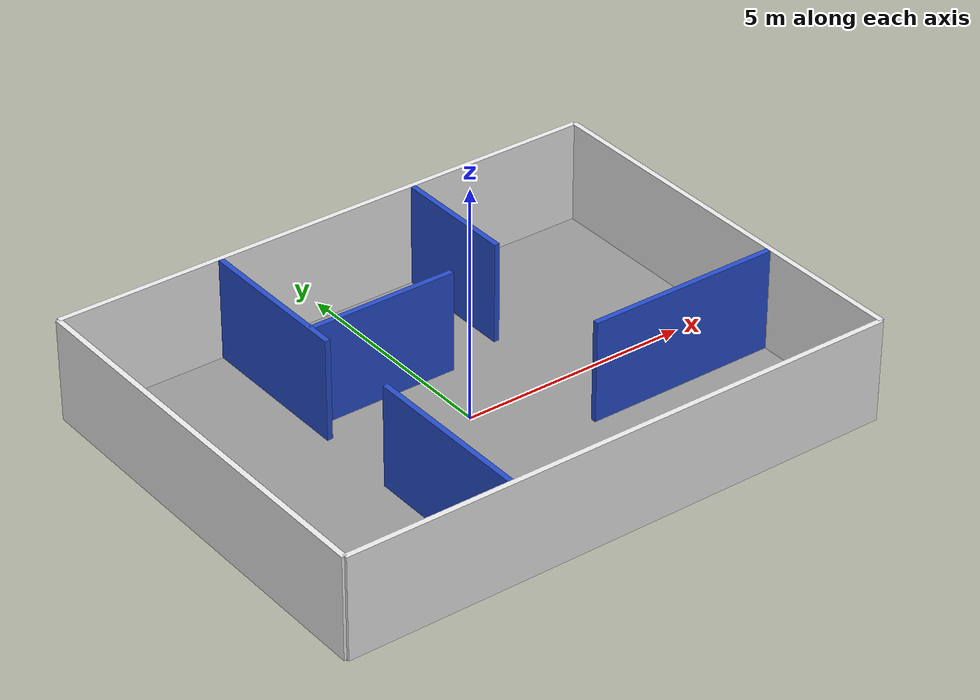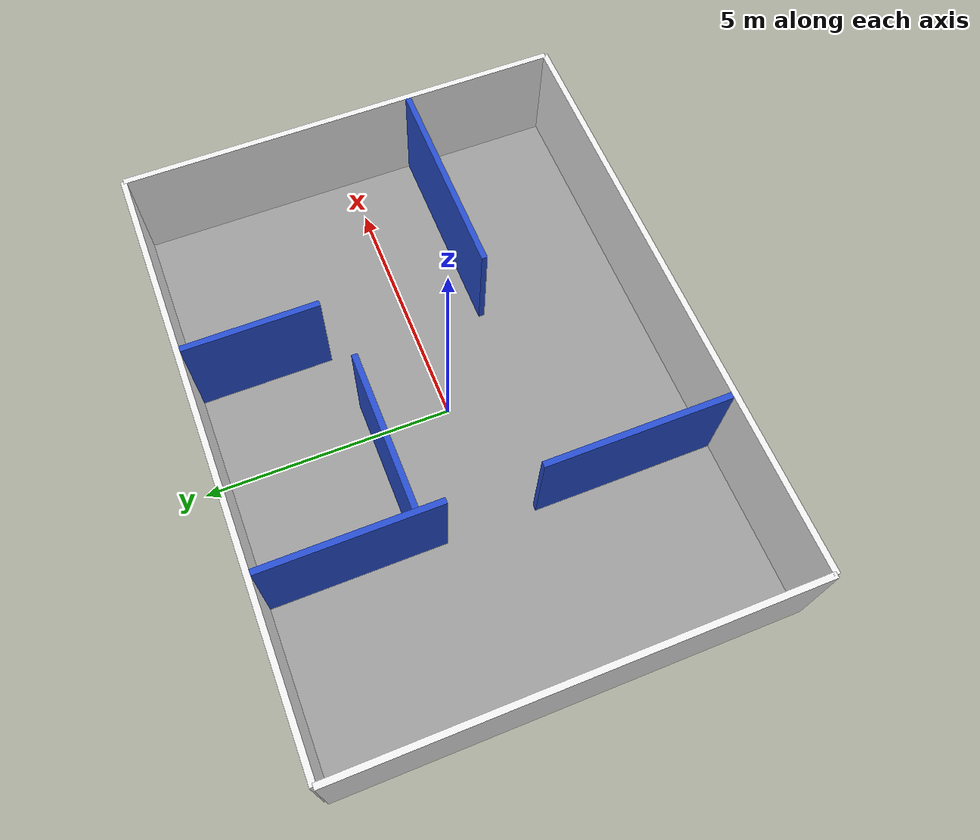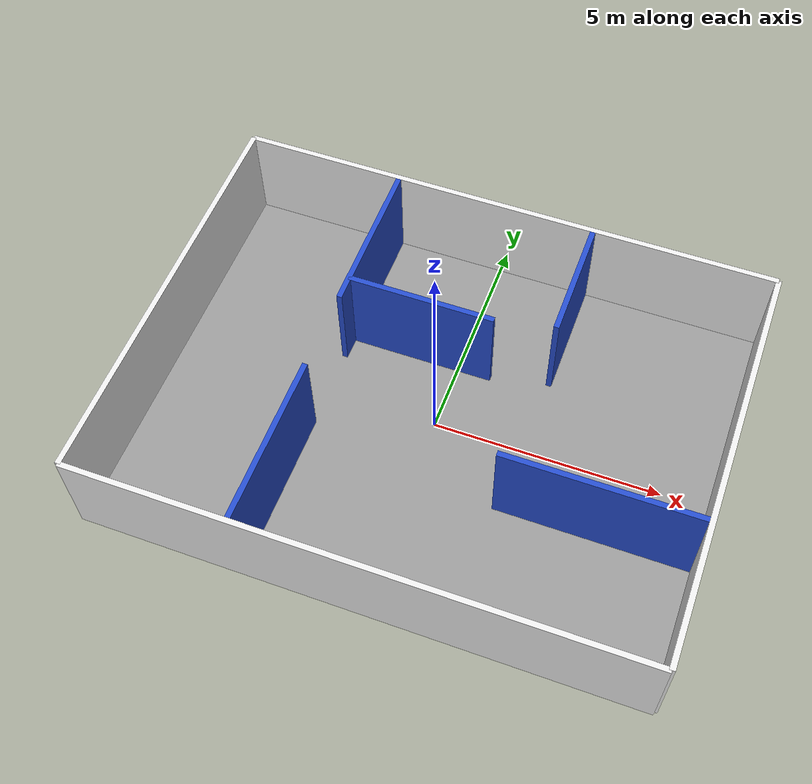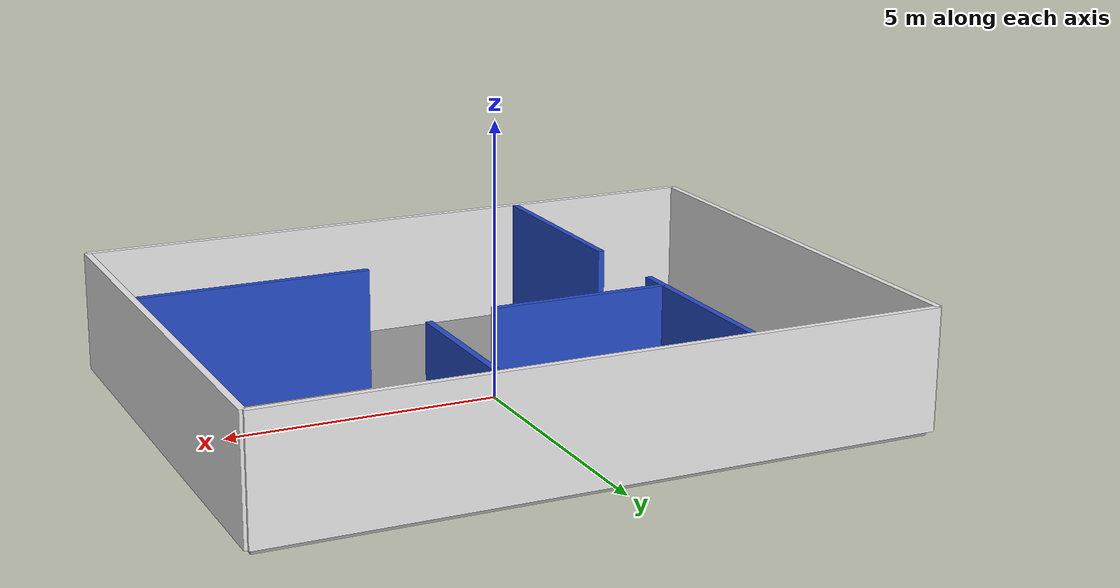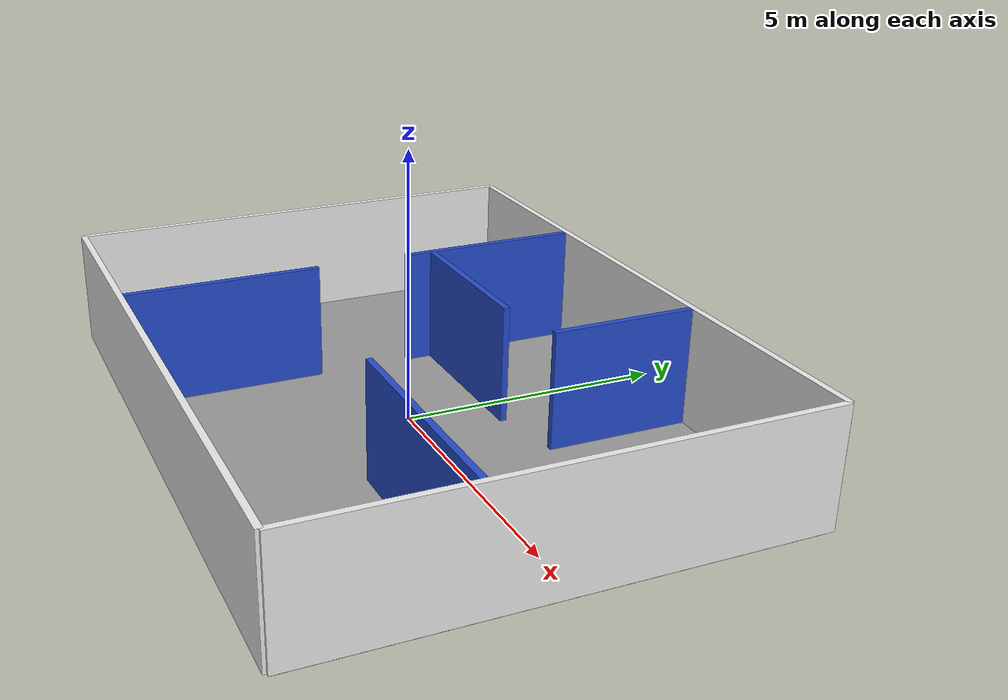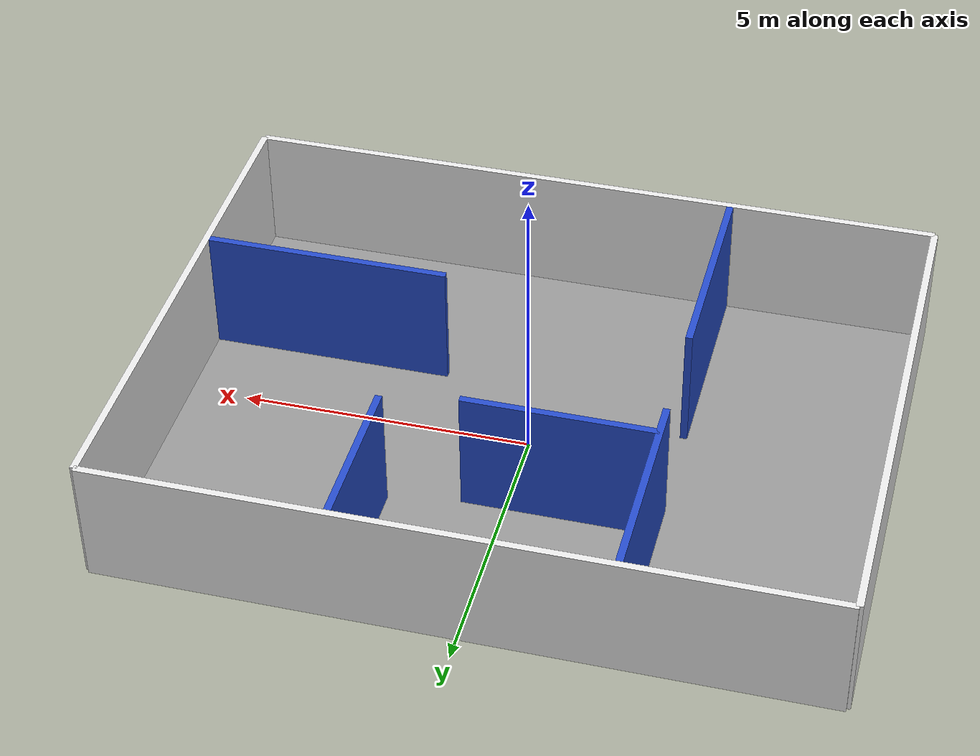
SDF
<sdf version="1.7">
 <world name="indoor_flat">
  <plugin name="gazebo_ros_state" filename="libgazebo_ros_state.so">
   <ros><namespace>/gazebo</namespace></ros>
  </plugin>
  <gravity>0 0 -9.8</gravity>
  <physics name="ode_physics" type="ode">
   <max_step_size>0.001</max_step_size>
   <real_time_factor>1.0</real_time_factor>
   <real_time_update_rate>1000</real_time_update_rate>
   <ode>
    <solver><type>quick</type><iters>100</iters><sor>1.3</sor></solver>
    <constraints>
     <cfm>0.0</cfm>
     <erp>0.2</erp>
     <contact_max_correcting_vel>10.0</contact_max_correcting_vel>
     <contact_surface_layer>0.001</contact_surface_layer>
    </constraints>
   </ode>
  </physics>
  <scene>
   <ambient>0.45 0.45 0.45 1</ambient>
   <background>0.75 0.78 0.82 1</background>
   <shadows>true</shadows>
  </scene>
  <light name="sun" type="directional">
   <pose>0 0 10 0 0 0</pose>
   <diffuse>0.85 0.85 0.85 1</diffuse>
   <specular>0.2 0.2 0.2 1</specular>
   <direction>-0.45 0.25 -0.86</direction>
   <attenuation>
    <range>1000</range>
    <constant>0.9</constant>
    <linear>0.01</linear>
    <quadratic>0.001</quadratic>
   </attenuation>
  </light>
  <light name="indoor_fill" type="point">
   <pose>0 0 3.5 0 0 0</pose>
   <cast_shadows>false</cast_shadows>
   <diffuse>0.7 0.72 0.75 1</diffuse>
   <specular>0.05 0.05 0.05 1</specular>
   <attenuation>
    <range>18</range>
    <constant>0.4</constant>
    <linear>0.05</linear>
    <quadratic>0.01</quadratic>
   </attenuation>
  </light>
  <model name="indoor_flat_structure">
   <static>true</static>
   <link name="structure_link">
    <collision name="floor_collision">
     <pose>0 0 -0.05 0 0 0</pose>
     <geometry><box><size>12 9 0.1</size></box></geometry>
     <surface><friction><ode><mu>2.0</mu><mu2>2.0</mu2></ode></friction></surface>
    </collision>
    <visual name="floor_visual">
     <pose>0 0 -0.05 0 0 0</pose>
     <geometry><box><size>12 9 0.1</size></box></geometry>
     <material>
      <script><uri>file://media/materials/scripts/gazebo.material</uri><name>Gazebo/Grey</name></script>
     </material>
    </visual>
    <collision name="wall_west_collision">
     <pose>-6.06 0 1.1 0 0 0</pose>
     <geometry><box><size>0.12 9.12 2.2</size></box></geometry>
    </collision>
    <visual name="wall_west_visual">
     <pose>-6.06 0 1.1 0 0 0</pose>
     <geometry><box><size>0.12 9.12 2.2</size></box></geometry>
     <material>
      <script><uri>file://media/materials/scripts/gazebo.material</uri><name>Gazebo/White</name></script>
     </material>
    </visual>
    <collision name="wall_east_collision">
     <pose>6.06 0 1.1 0 0 0</pose>
     <geometry><box><size>0.12 9.12 2.2</size></box></geometry>
    </collision>
    <visual name="wall_east_visual">
     <pose>6.06 0 1.1 0 0 0</pose>
     <geometry><box><size>0.12 9.12 2.2</size></box></geometry>
     <material>
      <script><uri>file://media/materials/scripts/gazebo.material</uri><name>Gazebo/White</name></script>
     </material>
    </visual>
    <collision name="wall_south_collision">
     <pose>0 -4.56 1.1 0 0 0</pose>
     <geometry><box><size>12.12 0.12 2.2</size></box></geometry>
    </collision>
    <visual name="wall_south_visual">
     <pose>0 -4.56 1.1 0 0 0</pose>
     <geometry><box><size>12.12 0.12 2.2</size></box></geometry>
     <material>
      <script><uri>file://media/materials/scripts/gazebo.material</uri><name>Gazebo/White</name></script>
     </material>
    </visual>
    <collision name="wall_north_collision">
     <pose>0 4.56 1.1 0 0 0</pose>
     <geometry><box><size>12.12 0.12 2.2</size></box></geometry>
    </collision>
    <visual name="wall_north_visual">
     <pose>0 4.56 1.1 0 0 0</pose>
     <geometry><box><size>12.12 0.12 2.2</size></box></geometry>
     <material>
      <script><uri>file://media/materials/scripts/gazebo.material</uri><name>Gazebo/White</name></script>
     </material>
    </visual>
    <collision name="partition_west_south_collision">
     <pose>-2.5 -2.65 1.1 0 0 0</pose>
     <geometry><box><size>0.12 3.7 2.2</size></box></geometry>
    </collision>
    <visual name="partition_west_south_visual">
     <pose>-2.5 -2.65 1.1 0 0 0</pose>
     <geometry><box><size>0.12 3.7 2.2</size></box></geometry>
     <material>
      <script><uri>file://media/materials/scripts/gazebo.material</uri><name>Gazebo/Blue</name></script>
     </material>
    </visual>
    <collision name="partition_west_north_collision">
     <pose>-2.5 2.75 1.1 0 0 0</pose>
     <geometry><box><size>0.12 3.5 2.2</size></box></geometry>
    </collision>
    <visual name="partition_west_north_visual">
     <pose>-2.5 2.75 1.1 0 0 0</pose>
     <geometry><box><size>0.12 3.5 2.2</size></box></geometry>
     <material>
      <script><uri>file://media/materials/scripts/gazebo.material</uri><name>Gazebo/Blue</name></script>
     </material>
    </visual>
    <collision name="partition_north_collision">
     <pose>-0.88 1.55 1.1 0 0 0</pose>
     <geometry><box><size>3.24 0.12 2.2</size></box></geometry>
    </collision>
    <visual name="partition_north_visual">
     <pose>-0.88 1.55 1.1 0 0 0</pose>
     <geometry><box><size>3.24 0.12 2.2</size></box></geometry>
     <material>
      <script><uri>file://media/materials/scripts/gazebo.material</uri><name>Gazebo/Blue</name></script>
     </material>
    </visual>
    <collision name="partition_east_collision">
     <pose>3.9 -1.45 1.1 0 0 0</pose>
     <geometry><box><size>4.2 0.12 2.2</size></box></geometry>
    </collision>
    <visual name="partition_east_visual">
     <pose>3.9 -1.45 1.1 0 0 0</pose>
     <geometry><box><size>4.2 0.12 2.2</size></box></geometry>
     <material>
      <script><uri>file://media/materials/scripts/gazebo.material</uri><name>Gazebo/Blue</name></script>
     </material>
    </visual>
    <collision name="partition_short_collision">
     <pose>2.0 3.15 1.1 0 0 0</pose>
     <geometry><box><size>0.12 2.7 2.2</size></box></geometry>
    </collision>
    <visual name="partition_short_visual">
     <pose>2.0 3.15 1.1 0 0 0</pose>
     <geometry><box><size>0.12 2.7 2.2</size></box></geometry>
     <material>
      <script><uri>file://media/materials/scripts/gazebo.material</uri><name>Gazebo/Blue</name></script>
     </material>
    </visual>
   </link>
  </model>
 </world>
</sdf>
